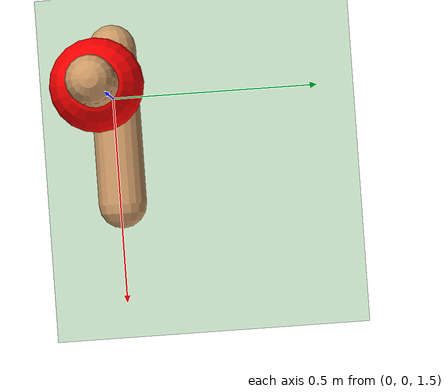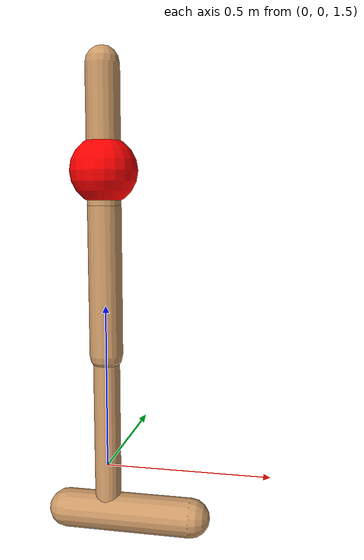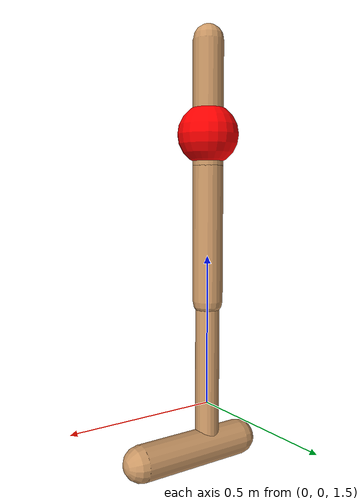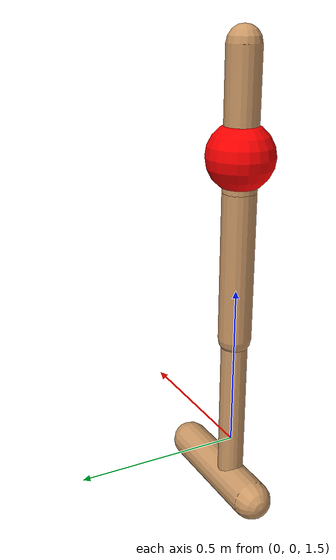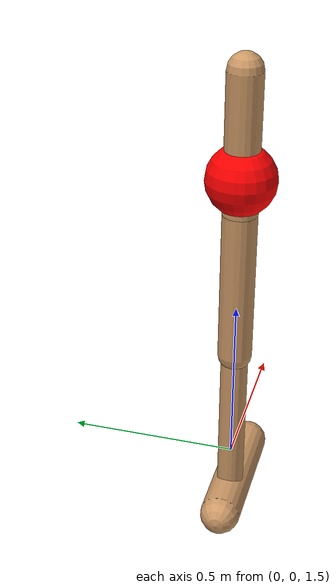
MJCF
<mujoco model="hopper">
   <compiler angle="radian" meshdir="assets" autolimits="true" />

  <option timestep="0.02" iterations="1" ls_iterations="5">
    <flag eulerdamp="disable" />
  </option>

  <visual>
    <map znear="0.02"/>
  </visual>

   <custom>
    <numeric data="15" name="max_contact_points" />
    <numeric data="15" name="max_geom_pairs" />
  </custom>

  <default class="main">
    <joint limited="true" armature="1" damping="1"/>
    <geom condim="3" solimp="0.8 0.8 0.01 0.5 2" margin="0.001" material="geom" rgba="0.8 0.6 0.4 1"/>
    <general ctrllimited="true" ctrlrange="-0.4 0.4"/>
  </default>
  <asset>
    <texture type="skybox" builtin="gradient" rgb1="0.4 0.5 0.6" rgb2="0 0 0" width="100" height="600"/>
    <texture type="cube" name="texgeom" builtin="flat" mark="cross" rgb1="0.8 0.6 0.4" rgb2="0.8 0.6 0.4" markrgb="1 1 1" width="127" height="762"/>
    <texture type="2d" name="texplane" builtin="checker" rgb1="0 0 0" rgb2="0.8 0.8 0.8" width="100" height="100"/>
    <material name="MatPlane" texture="texplane" texrepeat="60 60" specular="1" shininess="1" reflectance="0.5"/>
    <material name="geom" texture="texgeom" texuniform="true"/>
  </asset>
  <worldbody>
    <geom name="floor" size="20 20 0.125" type="plane" condim="3" material="MatPlane" rgba="0.8 0.9 0.8 1"/>
    <light pos="0 0 1.3" dir="0 0 -1" directional="true" cutoff="100" exponent="1" diffuse="1 1 1" specular="0.1 0.1 0.1"/>
    <body name="torso" pos="0 0 2.5" gravcomp="0" >
      <joint name="rootx" pos="0 0 -1.25" axis="1 0 0" limited="false" type="slide" armature="0" damping="0"/>
      <joint name="rootz" pos="0 0 -1.25" axis="0 0 1" limited="false" type="slide" ref="1.25" armature="0" damping="0"/>
      <joint name="rooty" pos="0 0 0" axis="0 1 0" limited="false" armature="0" damping="0"/>
      <geom name="torso_geom" size="0.05 0.2" type="capsule" friction="0.9 0.005 0.0001"/>
      <site name="body_site" pos="0 0 -0.1" size="0.1" rgba="1 0 0 1"/>
      <camera name="track" pos="0 -3 -0.25" quat="0.707107 0.707107 0 0" mode="trackcom"/>
      <body name="thigh" pos="0 0 -0.2" gravcomp="0">
        <joint name="thigh_joint" pos="0 0 0" axis="0 -1 0" range="-2.61799 0"/>
        <geom name="thigh_geom" size="0.05 0.225" pos="0 0 -0.225" type="capsule" friction="0.9 0.005 0.0001"/>
        <body name="leg" pos="0 0 -0.7" gravcomp="0">
          <joint name="leg_joint" pos="0 0 0.25" axis="0 -1 0" range="-2.61799 0"/>
          <geom name="leg_geom" size="0.04 0.25" type="capsule" friction="0.9 0.005 0.0001"/>
          <body name="foot" pos="0.13 0 -0.35" gravcomp="0">
            <joint name="foot_joint" pos="-0.13 0 0.1" axis="0 -1 0" range="-0.785398 0.785398"/>
            <geom name="foot_geom" size="0.06 0.195" pos="-0.065 0 0.1" quat="0.707107 0 -0.707107 0" type="capsule" friction="2 0.005 0.0001"/>
            <site name="foot_site" pos="0 0 0" size="0.05" rgba="1 0 0 0"/>
          </body>
        </body>
      </body>
    </body>
  </worldbody>

   <actuator>
    <general joint="thigh_joint" ctrlrange="-1 1" gear="200 0 0 0 0 0" actdim="0"/>
    <general joint="leg_joint" ctrlrange="-1 1" gear="200 0 0 0 0 0" actdim="0"/>
    <general joint="foot_joint" ctrlrange="-1 1" gear="200 0 0 0 0 0" actdim="0"/>
  </actuator>

    <sensor>
        <framepos      name="torso_position" objtype="xbody" objname="torso"/>
        <subtreelinvel name="torso_subtreelinvel" body="torso"/>
        <framezaxis    name="torso_zaxis" objtype="xbody" objname="torso"/>
    </sensor>

  <keyframe>
    <key name="start"
      qpos="
      0 0 0
      0 0 0"
      qvel="
      0 0 0
      0 0 0"
      ctrl="
      0 0 0"/>
  </keyframe>

</mujoco>
